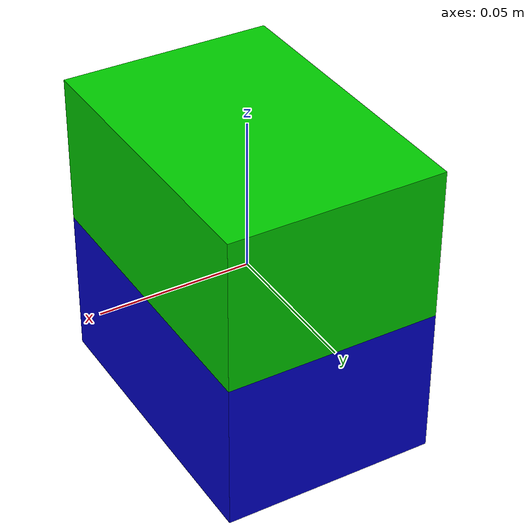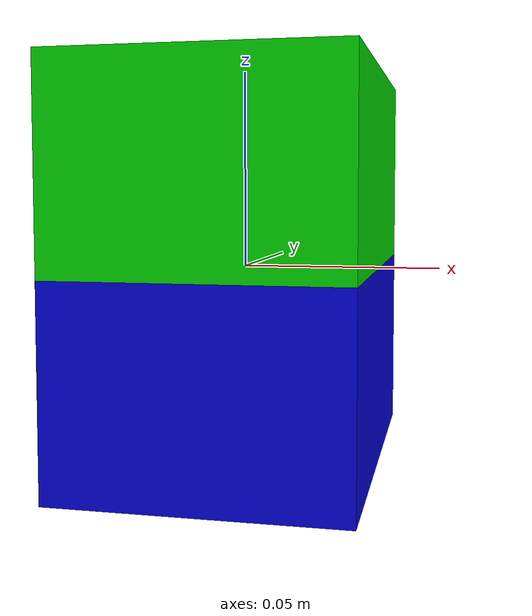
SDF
<?xml version="1.0"?>
<sdf version='1.6'>
<model name="brick">
  <link name="brick_base">
  </link>
  <link name="brick_dummy_link1">
    <inertial>
      <pose frame=''>0 0 0 0 0 0 </pose>
      <mass>1e-10</mass>
      <inertia>
        <ixx>1e-10</ixx>
        <ixy>0</ixy>
        <ixz>0</ixz>
        <iyy>1e-10</iyy>
        <iyz>0</iyz>
        <izz>1e-10</izz>
      </inertia>
    </inertial>
  </link>
  <joint name="brick_translate_y_joint" type="prismatic">
    <child> brick_dummy_link1 </child>
    <parent> brick_base </parent>
    <axis>
      <xyz> 0 1 0 </xyz>
      <limit>
        <!-- Drake parses a zero effort joint as an un-actuated joint. -->
        <effort> 0 </effort>
      </limit>
    </axis>
  </joint>
  <link name="brick_dummy_link2">
    <inertial>
      <pose frame=''>0 0 0 0 0 0 </pose>
      <mass>1e-10</mass>
      <inertia>
        <ixx>1e-10</ixx>
        <ixy>0</ixy>
        <ixz>0</ixz>
        <iyy>1e-10</iyy>
        <iyz>0</iyz>
        <izz>1e-10</izz>
      </inertia>
    </inertial>
  </link>
  <joint name="brick_translate_z_joint" type="prismatic">
    <child> brick_dummy_link2 </child>
    <parent> brick_dummy_link1 </parent>
    <axis>
      <xyz> 0 0 1 </xyz>
      <limit>
        <!-- Drake parses a zero effort joint as an un-actuated joint. -->
        <effort> 0 </effort>
      </limit>
    </axis>
  </joint>
  <link name="brick_link">
    <inertial>
      <pose frame=''>0 0 0 0 0 0 </pose>
      <mass>0.028</mass>
        <inertia>
          <ixx>1.17e-5</ixx>
          <ixy>0</ixy>
          <ixz>0</ixz>
          <iyy>1.9e-5</iyy>
          <iyz>0</iyz>
          <izz>1.9e-5</izz>
        </inertia>
    </inertial>
    <visual name='brick_visual_1'>
      <pose frame=''>0 0 0.025 0 0 0</pose>
      <geometry>
        <box>
          <size>0.07 0.1 0.05</size>
        </box>
      </geometry>
      <material>
        <diffuse>0 0.8 0 1.0</diffuse>
      </material>
    </visual>
    <visual name='brick_visual_2'>
      <pose frame=''>0 0 -0.025 0 0 0</pose>
      <geometry>
        <box>
          <size>0.07 0.1 0.05</size>
        </box>
      </geometry>
      <material>
        <diffuse>0 0 0.8 1.0</diffuse>
      </material>
    </visual>
    <collision name='box_collision'>
      <pose>0 0 0 0 0 0</pose>
      <geometry>
        <box>
          <size>0.07 0.1 0.1</size>
        </box>
      </geometry>
      <drake:proximityi_properties>
        <drake:mesh_resolution_hint>0.1</drake:mesh_resolution_hint>
        <drake:rigid_hydroelastic/>
      </drake:proximityi_properties>
    </collision>
    <collision name='sphere1_collision'>
      <pose>-0.035 0.05 0.05 0 0 0</pose>
      <geometry>
        <sphere>
          <radius>.0001</radius>
        </sphere>
      </geometry>
    </collision>
    <collision name='sphere2_collision'>
      <pose>-0.035 -0.05 0.05 0 0 0</pose>
      <geometry>
        <sphere>
          <radius>.0001</radius>
        </sphere>
      </geometry>
    </collision>
    <collision name='sphere3_collision'>
      <pose>-0.035 0.05 -0.05 0 0 0</pose>
      <geometry>
        <sphere>
          <radius>.0001</radius>
        </sphere>
      </geometry>
    </collision>
    <collision name='sphere4_collision'>
      <pose>-0.035 -0.05 -0.05 0 0 0</pose>
      <geometry>
        <sphere>
          <radius>.0001</radius>
        </sphere>
      </geometry>
    </collision>
   </link>
   <joint name="brick_revolute_x_joint" type="revolute">
     <child> brick_link </child>
     <parent> brick_dummy_link2 </parent>
     <axis>
       <xyz> 1 0 0 </xyz>
       <limit>
         <!-- Drake parses a zero effort joint as an un-actuated joint. -->
         <effort> 0 </effort>
       </limit>
     </axis>
   </joint>
</model>
</sdf>
